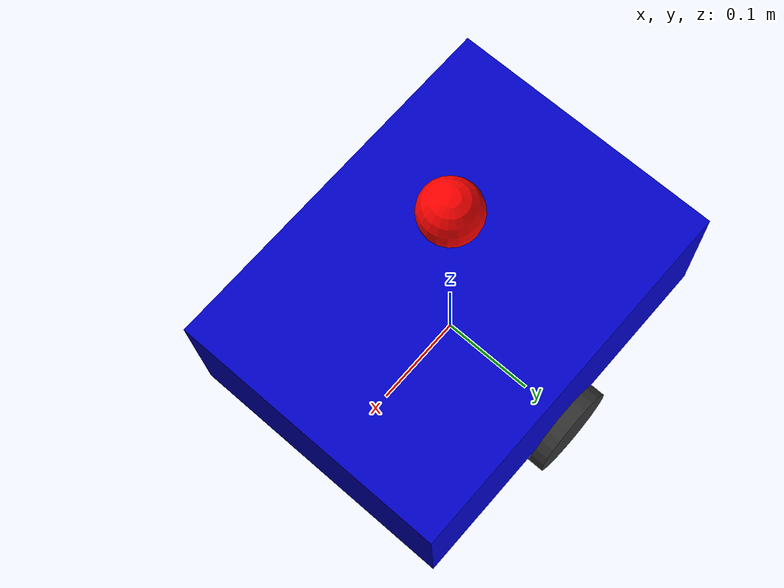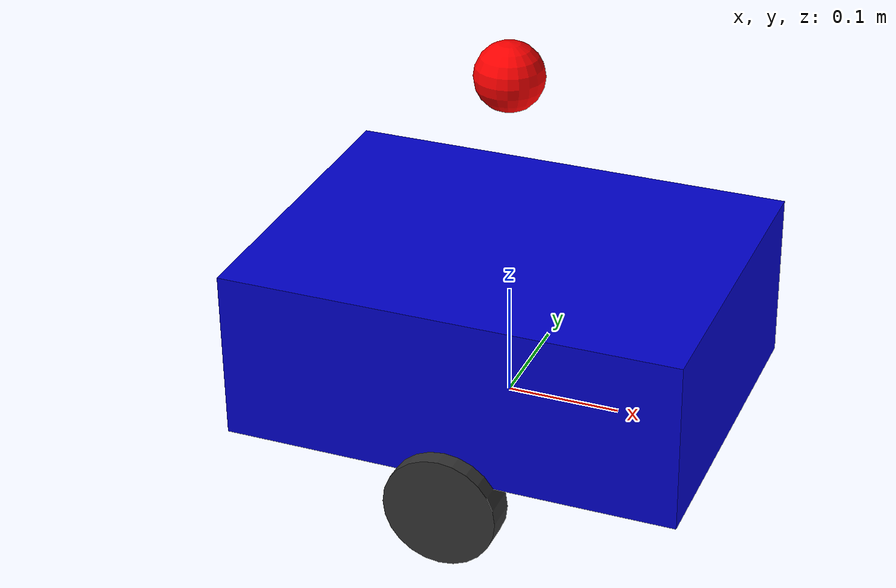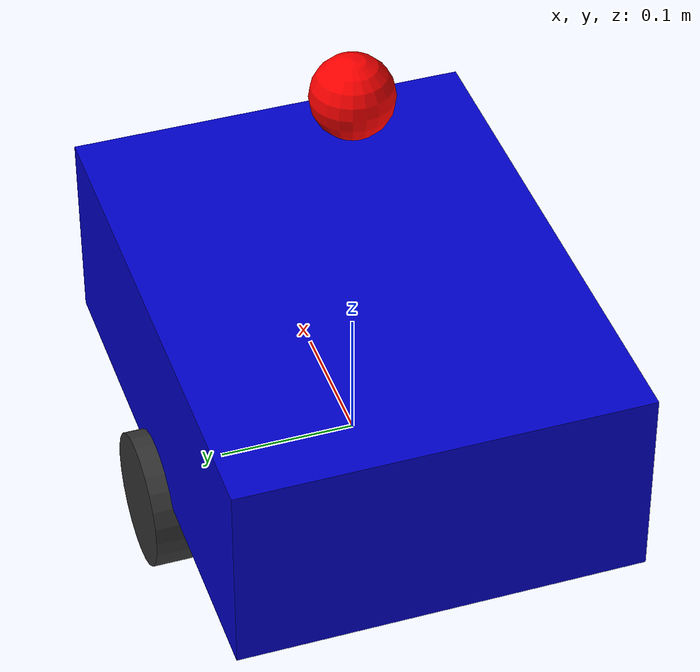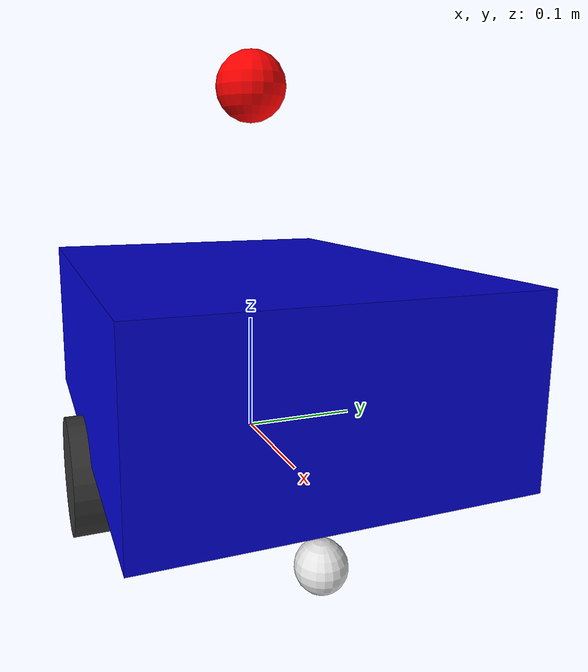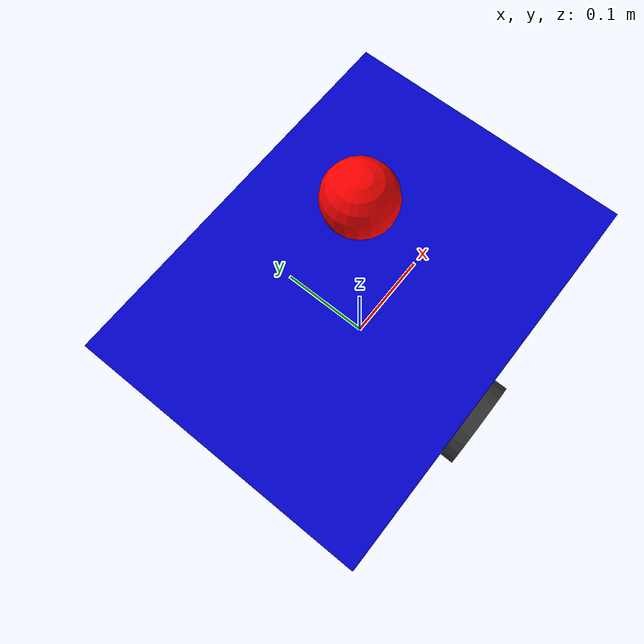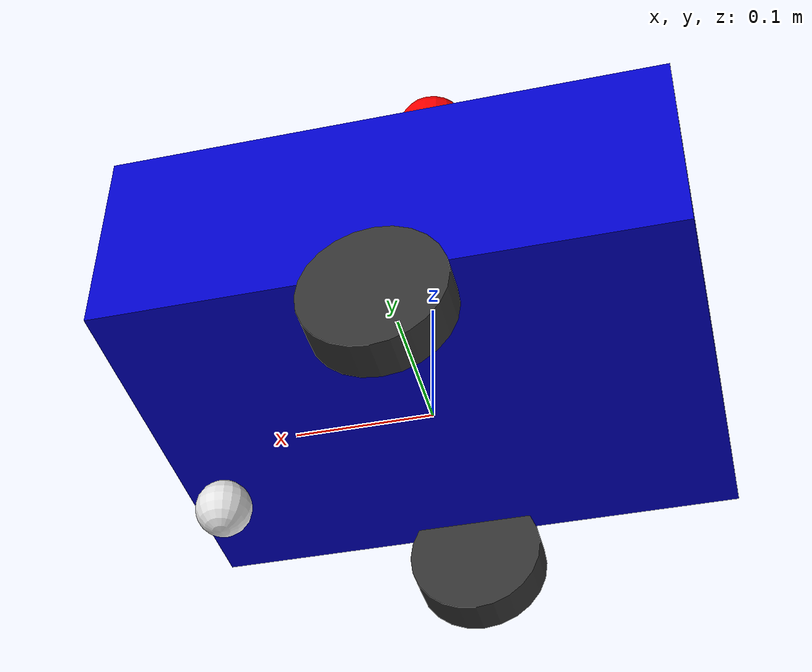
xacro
<?xml version="1.0"?>
<robot xmlns:xacro="http://www.ros.org/wiki/xacro" name="marked_robot">
  <xacro:include filename="simple_robot.xacro"/>
  <link name="custom_marker"><visual><geometry><sphere radius="0.03"/></geometry><material name="red_marker"><color rgba="1.0 0.0 0.0 1.0"/></material></visual></link>
  <joint name="marker_joint" type="fixed"><parent link="base_link"/><child link="custom_marker"/><origin xyz="0 0 0.3" rpy="0 0 0"/></joint>
</robot>

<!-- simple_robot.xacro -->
<robot xmlns:xacro="http://www.ros.org/wiki/xacro" name="simple_robot">
  <xacro:property name="chassis_length" value="0.4"/>
  <xacro:property name="chassis_width" value="0.3"/>
  <xacro:property name="chassis_height" value="0.15"/>
  <xacro:property name="wheel_radius" value="0.05"/>
  <xacro:property name="wheel_width" value="0.03"/>
  <material name="blue"><color rgba="0 0 0.8 1"/></material>
  <material name="black"><color rgba="0.2 0.2 0.2 1"/></material>
  <material name="white"><color rgba="0.9 0.9 0.9 1"/></material>
  <link name="base_link">
    <visual><origin xyz="0 0 ${chassis_height/2}"/><geometry><box size="${chassis_length} ${chassis_width} ${chassis_height}"/></geometry><material name="blue"/></visual>
    <collision><origin xyz="0 0 ${chassis_height/2}"/><geometry><box size="${chassis_length} ${chassis_width} ${chassis_height}"/></geometry></collision>
    <inertial><origin xyz="0 0 ${chassis_height/2}"/><mass value="5.0"/><inertia ixx="0.1" ixy="0" ixz="0" iyy="0.1" iyz="0" izz="0.15"/></inertial>
  </link>
  <xacro:macro name="wheel" params="name reflect">
    <joint name="${name}_wheel_joint" type="continuous">
      <parent link="base_link"/><child link="${name}_wheel_link"/>
      <origin xyz="0 ${reflect*chassis_width/2} ${-chassis_height/2+wheel_radius}"/>
      <axis xyz="0 1 0"/>
    </joint>
    <link name="${name}_wheel_link">
      <visual><origin rpy="1.5708 0 0"/><geometry><cylinder radius="${wheel_radius}" length="${wheel_width}"/></geometry><material name="black"/></visual>
      <collision><origin rpy="1.5708 0 0"/><geometry><cylinder radius="${wheel_radius}" length="${wheel_width}"/></geometry></collision>
      <inertial><mass value="0.1"/><inertia ixx="0.0001" ixy="0" ixz="0" iyy="0.0001" iyz="0" izz="0.0001"/></inertial>
    </link>
  </xacro:macro>
  <xacro:wheel name="left" reflect="1"/>
  <xacro:wheel name="right" reflect="-1"/>
  <joint name="caster_wheel_joint" type="fixed"><parent link="base_link"/><child link="caster_wheel_link"/><origin xyz="0.15 0 ${-chassis_height/2+0.02}"/></joint>
  <link name="caster_wheel_link">
    <visual><geometry><sphere radius="0.02"/></geometry><material name="white"/></visual>
    <collision><geometry><sphere radius="0.02"/></geometry></collision>
  </link>
</robot>
